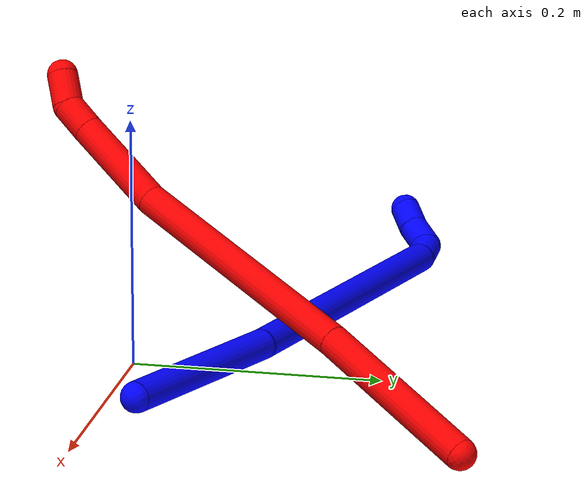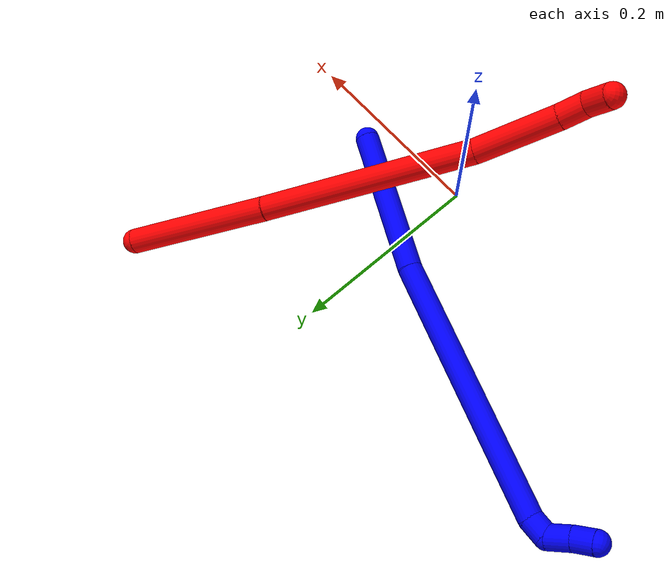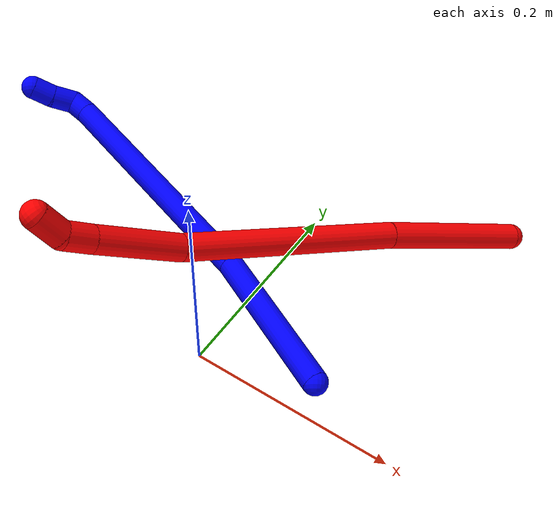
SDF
<sdf version="1.7">
 <world name="default">
  <plugin name="TubeGeneratorPlugin" filename="libtube_generator_plugin.so"/>
  <model name="photoneo_s_sensor">
   <static>1</static>
   <pose>0 0 2 1.57079 1.57079 3.14159</pose>
   <link name="link">
    <inertial><mass>0.1</mass></inertial>
    <sensor name="sensor" type="depth">
     <update_rate>30</update_rate>
     <camera>
      <horizontal_fov>1.22</horizontal_fov>
      <image><width>1920</width><height>1200</height><format>B8G8R8</format></image>
      <clip><near>0.1</near><far>4</far></clip>
      <depth_camera><output>points</output></depth_camera>
     </camera>
     <plugin name="camera_plugin" filename="libgazebo_ros_depth_camera.so">
      <baseline>0.2</baseline>
      <alwaysOn>1</alwaysOn>
      <updateRate>0.0</updateRate>
      <cameraName>camera_ir</cameraName>
      <imageTopicName>/camera/color/image_raw</imageTopicName>
      <cameraInfoTopicName>/camera/color/camera_info</cameraInfoTopicName>
      <depthImageTopicName>/camera/depth/image_raw</depthImageTopicName>
      <depthImageCameraInfoTopicName>/camera/depth/camera_info</depthImageCameraInfoTopicName>
      <pointCloudTopicName>/camera/depth/points</pointCloudTopicName>
      <frameName>fr_optical</frameName>
      <pointCloudCutoff>0.1</pointCloudCutoff>
      <pointCloudCutoffMax>2.0</pointCloudCutoffMax>
      <distortionK1>0</distortionK1>
      <distortionK2>0</distortionK2>
      <distortionK3>0</distortionK3>
      <distortionT1>0</distortionT1>
      <distortionT2>0</distortionT2>
      <CxPrime>0</CxPrime>
      <Cx>0</Cx>
      <Cy>0</Cy>
      <focalLength>0</focalLength>
      <hackBaseline>0</hackBaseline>
     </plugin>
    </sensor>
   </link>
  </model>
  <gravity>0 0 -9.8</gravity>
  <magnetic_field>6e-06 2.3e-05 -4.2e-05</magnetic_field>
  <atmosphere type="adiabatic"/>
  <physics name="default_physics" default="0" type="ode">
   <max_step_size>0.003</max_step_size>
   <real_time_factor>1</real_time_factor>
   <real_time_update_rate>1000</real_time_update_rate>
   <max_contacts>10000</max_contacts>
   <ode>
    <solver>
     <type>quick</type>
     <iters>100</iters>
     <sor>1.3</sor>
     <use_dynamic_moi_rescaling>0</use_dynamic_moi_rescaling>
    </solver>
    <constraints>
     <contact_max_correcting_vel>0</contact_max_correcting_vel>
     <contact_surface_layer>0.001</contact_surface_layer>
     <cfm>0</cfm>
     <erp>0.2</erp>
    </constraints>
   </ode>
  </physics>
  <scene><ambient>0.4 0.4 0.4 1</ambient><background>0.7 0.7 0.7 1</background><shadows>0</shadows></scene>
  <audio><device>default</device></audio>
  <spherical_coordinates>
   <surface_model>EARTH_WGS84</surface_model>
   <latitude_deg>0</latitude_deg>
   <longitude_deg>0</longitude_deg>
   <elevation>0</elevation>
   <heading_deg>0</heading_deg>
  </spherical_coordinates>
  <model name="bin">
   <static>1</static>
   <link name="bottom">
    <collision name="collision-bottom">
     <pose>0 0 -0.01 0 -0 0</pose>
     <geometry><box><size>0.8 0.6 0.02</size></box></geometry>
     <surface>
      <friction><ode><mu>100</mu><mu2>100</mu2></ode></friction>
      <contact><collide_bitmask>65535</collide_bitmask></contact>
     </surface>
    </collision>
   </link>
   <link name="west_wall">
    <collision name="collision-west_wall">
     <pose>-0.41 0 0.1 0 -0 0</pose>
     <geometry><box><size>0.02 0.6 0.2</size></box></geometry>
     <surface>
      <friction><ode><mu>100</mu><mu2>100</mu2></ode></friction>
      <contact><collide_bitmask>65535</collide_bitmask></contact>
     </surface>
    </collision>
   </link>
   <link name="east_wall">
    <collision name="collision-east_wall">
     <pose>0.41 0 0.1 0 -0 0</pose>
     <geometry><box><size>0.02 0.6 0.2</size></box></geometry>
     <surface>
      <friction><ode><mu>100</mu><mu2>100</mu2></ode></friction>
      <contact><collide_bitmask>65535</collide_bitmask></contact>
     </surface>
    </collision>
   </link>
   <link name="south_wall">
    <collision name="collision-south_wall">
     <pose>0 -0.31 0.1 0 -0 0</pose>
     <geometry><box><size>0.8 0.02 0.2</size></box></geometry>
     <surface>
      <friction><ode><mu>100</mu><mu2>100</mu2></ode></friction>
      <contact><collide_bitmask>65535</collide_bitmask></contact>
     </surface>
    </collision>
   </link>
   <link name="north_wall">
    <collision name="collision-north_wall">
     <pose>0 0.31 0.1 0 -0 0</pose>
     <geometry><box><size>0.8 0.02 0.2</size></box></geometry>
     <surface>
      <friction><ode><mu>100</mu><mu2>100</mu2></ode></friction>
      <contact><collide_bitmask>65535</collide_bitmask></contact>
     </surface>
    </collision>
   </link>
  </model>
  <model name="1">
   <static>0</static>
   <link name="1">
    <collision name="collision-cylinder-e_1_1_4">
     <pose>-0.043941 0.018437 0.062702 -0.285985 -0.591918 0.087744</pose>
     <geometry><cylinder><radius>0.0125</radius><length>0.157509</length></cylinder></geometry>
     <surface>
      <friction><ode><mu>1.16</mu><mu2>1.16</mu2><slip1>0</slip1><slip2>0</slip2></ode></friction>
      <contact><ode><kp>1e+06</kp><kd>1</kd><max_vel>0</max_vel><min_depth>0.001</min_depth></ode></contact>
     </surface>
    </collision>
    <visual name="visual-cylinder-e_1_1_4">
     <pose>-0.043941 0.018437 0.062702 -0.285985 -0.591918 0.087744</pose>
     <geometry><cylinder><radius>0.0125</radius><length>0.157509</length></cylinder></geometry>
     <material><ambient>0 0 1 1</ambient></material>
    </visual>
    <collision name="collision-cylinder-e_2_4_5">
     <pose>-0.177421 0.062915 0.225172 -0.255313 -0.715059 0.095829</pose>
     <geometry><cylinder><radius>0.0125</radius><length>0.273122</length></cylinder></geometry>
     <surface>
      <friction><ode><mu>1.16</mu><mu2>1.16</mu2><slip1>0</slip1><slip2>0</slip2></ode></friction>
      <contact><ode><kp>1e+06</kp><kd>1</kd><max_vel>0</max_vel><min_depth>0.001</min_depth></ode></contact>
     </surface>
    </collision>
    <visual name="visual-cylinder-e_2_4_5">
     <pose>-0.177421 0.062915 0.225172 -0.255313 -0.715059 0.095829</pose>
     <geometry><cylinder><radius>0.0125</radius><length>0.273122</length></cylinder></geometry>
     <material><ambient>0 0 1 1</ambient></material>
    </visual>
    <collision name="collision-cylinder-e_3_5_6">
     <pose>-0.27504 0.088077 0.331885 0.125747 -0.856994 -0.057502</pose>
     <geometry><cylinder><radius>0.0125</radius><length>0.021382</length></cylinder></geometry>
     <surface>
      <friction><ode><mu>1.16</mu><mu2>1.16</mu2><slip1>0</slip1><slip2>0</slip2></ode></friction>
      <contact><ode><kp>1e+06</kp><kd>1</kd><max_vel>0</max_vel><min_depth>0.001</min_depth></ode></contact>
     </surface>
    </collision>
    <visual name="visual-cylinder-e_3_5_6">
     <pose>-0.27504 0.088077 0.331885 0.125747 -0.856994 -0.057502</pose>
     <geometry><cylinder><radius>0.0125</radius><length>0.021382</length></cylinder></geometry>
     <material><ambient>0 0 1 1</ambient></material>
    </visual>
    <collision name="collision-cylinder-e_4_6_7">
     <pose>-0.293198 0.079877 0.339787 1.44071 -0.938382 -0.837285</pose>
     <geometry><cylinder><radius>0.0125</radius><length>0.024988</length></cylinder></geometry>
     <surface>
      <friction><ode><mu>1.16</mu><mu2>1.16</mu2><slip1>0</slip1><slip2>0</slip2></ode></friction>
      <contact><ode><kp>1e+06</kp><kd>1</kd><max_vel>0</max_vel><min_depth>0.001</min_depth></ode></contact>
     </surface>
    </collision>
    <visual name="visual-cylinder-e_4_6_7">
     <pose>-0.293198 0.079877 0.339787 1.44071 -0.938382 -0.837285</pose>
     <geometry><cylinder><radius>0.0125</radius><length>0.024988</length></cylinder></geometry>
     <material><ambient>0 0 1 1</ambient></material>
    </visual>
    <collision name="collision-cylinder-e_5_7_2">
     <pose>-0.312032 0.065594 0.343415 1.20455 -0.865529 -0.615042</pose>
     <geometry><cylinder><radius>0.0125</radius><length>0.022998</length></cylinder></geometry>
     <surface>
      <friction><ode><mu>1.16</mu><mu2>1.16</mu2><slip1>0</slip1><slip2>0</slip2></ode></friction>
      <contact><ode><kp>1e+06</kp><kd>1</kd><max_vel>0</max_vel><min_depth>0.001</min_depth></ode></contact>
     </surface>
    </collision>
    <visual name="visual-cylinder-e_5_7_2">
     <pose>-0.312032 0.065594 0.343415 1.20455 -0.865529 -0.615042</pose>
     <geometry><cylinder><radius>0.0125</radius><length>0.022998</length></cylinder></geometry>
     <material><ambient>0 0 1 1</ambient></material>
    </visual>
    <collision name="collision-sphere-2">
     <pose>-0.320788 0.058634 0.346084 0 -0 0</pose>
     <geometry><sphere><radius>0.0125</radius></sphere></geometry>
     <surface>
      <friction><ode><mu>1.16</mu><mu2>1.16</mu2><slip1>0</slip1><slip2>0</slip2></ode></friction>
      <contact><ode><kp>1e+06</kp><kd>1</kd><max_vel>0</max_vel><min_depth>0.001</min_depth></ode></contact>
     </surface>
    </collision>
    <visual name="visual-sphere-2">
     <pose>-0.320788 0.058634 0.346084 0 -0 0</pose>
     <geometry><sphere><radius>0.0125</radius></sphere></geometry>
     <material><ambient>0 0 1 1</ambient></material>
    </visual>
    <collision name="collision-sphere-7">
     <pose>-0.303276 0.072554 0.340745 0 -0 0</pose>
     <geometry><sphere><radius>0.0125</radius></sphere></geometry>
     <surface>
      <friction><ode><mu>1.16</mu><mu2>1.16</mu2><slip1>0</slip1><slip2>0</slip2></ode></friction>
      <contact><ode><kp>1e+06</kp><kd>1</kd><max_vel>0</max_vel><min_depth>0.001</min_depth></ode></contact>
     </surface>
    </collision>
    <visual name="visual-sphere-7">
     <pose>-0.303276 0.072554 0.340745 0 -0 0</pose>
     <geometry><sphere><radius>0.0125</radius></sphere></geometry>
     <material><ambient>0 0 1 1</ambient></material>
    </visual>
    <collision name="collision-sphere-6">
     <pose>-0.283121 0.0872 0.338829 0 -0 0</pose>
     <geometry><sphere><radius>0.0125</radius></sphere></geometry>
     <surface>
      <friction><ode><mu>1.16</mu><mu2>1.16</mu2><slip1>0</slip1><slip2>0</slip2></ode></friction>
      <contact><ode><kp>1e+06</kp><kd>1</kd><max_vel>0</max_vel><min_depth>0.001</min_depth></ode></contact>
     </surface>
    </collision>
    <visual name="visual-sphere-6">
     <pose>-0.283121 0.0872 0.338829 0 -0 0</pose>
     <geometry><sphere><radius>0.0125</radius></sphere></geometry>
     <material><ambient>0 0 1 1</ambient></material>
    </visual>
    <collision name="collision-sphere-5">
     <pose>-0.266959 0.088955 0.324941 0 -0 0</pose>
     <geometry><sphere><radius>0.0125</radius></sphere></geometry>
     <surface>
      <friction><ode><mu>1.16</mu><mu2>1.16</mu2><slip1>0</slip1><slip2>0</slip2></ode></friction>
      <contact><ode><kp>1e+06</kp><kd>1</kd><max_vel>0</max_vel><min_depth>0.001</min_depth></ode></contact>
     </surface>
    </collision>
    <visual name="visual-sphere-5">
     <pose>-0.266959 0.088955 0.324941 0 -0 0</pose>
     <geometry><sphere><radius>0.0125</radius></sphere></geometry>
     <material><ambient>0 0 1 1</ambient></material>
    </visual>
    <collision name="collision-sphere-1">
     <geometry><sphere><radius>0.0125</radius></sphere></geometry>
     <surface>
      <friction><ode><mu>1.16</mu><mu2>1.16</mu2><slip1>0</slip1><slip2>0</slip2></ode></friction>
      <contact><ode><kp>1e+06</kp><kd>1</kd><max_vel>0</max_vel><min_depth>0.001</min_depth></ode></contact>
     </surface>
    </collision>
    <visual name="visual-sphere-1">
     <geometry><sphere><radius>0.0125</radius></sphere></geometry>
     <material><ambient>0 0 1 1</ambient></material>
    </visual>
    <collision name="collision-sphere-4">
     <pose>-0.087883 0.036874 0.125403 0 -0 0</pose>
     <geometry><sphere><radius>0.0125</radius></sphere></geometry>
     <surface>
      <friction><ode><mu>1.16</mu><mu2>1.16</mu2><slip1>0</slip1><slip2>0</slip2></ode></friction>
      <contact><ode><kp>1e+06</kp><kd>1</kd><max_vel>0</max_vel><min_depth>0.001</min_depth></ode></contact>
     </surface>
    </collision>
    <visual name="visual-sphere-4">
     <pose>-0.087883 0.036874 0.125403 0 -0 0</pose>
     <geometry><sphere><radius>0.0125</radius></sphere></geometry>
     <material><ambient>0 0 1 1</ambient></material>
    </visual>
    <inertial>
     <pose>-0.151525 0.050951 0.189721 0 -0 0</pose>
     <mass>0.5</mass>
     <inertia>
      <ixx>0.001682</ixx>
      <ixy>0</ixy>
      <ixz>0</ixz>
      <iyy>0.002149</iyy>
      <iyz>0</iyz>
      <izz>0.000936</izz>
     </inertia>
    </inertial>
   </link>
   <pose>0.108342 0.029026 0.012425 -1.17342 -0.163065 0.517205</pose>
  </model>
  <model name="2">
   <static>0</static>
   <link name="2">
    <collision name="collision-cylinder-e_1_1_4">
     <pose>-0.036291 -0.046811 -0.042417 2.30698 -0.521459 -1.08348</pose>
     <geometry><cylinder><radius>0.0125</radius><length>0.145705</length></cylinder></geometry>
     <surface>
      <friction><ode><mu>1.16</mu><mu2>1.16</mu2><slip1>0</slip1><slip2>0</slip2></ode></friction>
      <contact><ode><kp>1e+06</kp><kd>1</kd><max_vel>0</max_vel><min_depth>0.001</min_depth></ode></contact>
     </surface>
    </collision>
    <visual name="visual-cylinder-e_1_1_4">
     <pose>-0.036291 -0.046811 -0.042417 2.30698 -0.521459 -1.08348</pose>
     <geometry><cylinder><radius>0.0125</radius><length>0.145705</length></cylinder></geometry>
     <material><ambient>1 0 0 1</ambient></material>
    </visual>
    <collision name="collision-cylinder-e_2_4_5">
     <pose>-0.120671 -0.162715 -0.150496 2.33074 -0.467247 -1.0125</pose>
     <geometry><cylinder><radius>0.0125</radius><length>0.213521</length></cylinder></geometry>
     <surface>
      <friction><ode><mu>1.16</mu><mu2>1.16</mu2><slip1>0</slip1><slip2>0</slip2></ode></friction>
      <contact><ode><kp>1e+06</kp><kd>1</kd><max_vel>0</max_vel><min_depth>0.001</min_depth></ode></contact>
     </surface>
    </collision>
    <visual name="visual-cylinder-e_2_4_5">
     <pose>-0.120671 -0.162715 -0.150496 2.33074 -0.467247 -1.0125</pose>
     <geometry><cylinder><radius>0.0125</radius><length>0.213521</length></cylinder></geometry>
     <material><ambient>1 0 0 1</ambient></material>
    </visual>
    <collision name="collision-cylinder-e_3_5_6">
     <pose>-0.190063 -0.263652 -0.234847 2.1015 -0.523319 -0.874905</pose>
     <geometry><cylinder><radius>0.0125</radius><length>0.085259</length></cylinder></geometry>
     <surface>
      <friction><ode><mu>1.16</mu><mu2>1.16</mu2><slip1>0</slip1><slip2>0</slip2></ode></friction>
      <contact><ode><kp>1e+06</kp><kd>1</kd><max_vel>0</max_vel><min_depth>0.001</min_depth></ode></contact>
     </surface>
    </collision>
    <visual name="visual-cylinder-e_3_5_6">
     <pose>-0.190063 -0.263652 -0.234847 2.1015 -0.523319 -0.874905</pose>
     <geometry><cylinder><radius>0.0125</radius><length>0.085259</length></cylinder></geometry>
     <material><ambient>1 0 0 1</ambient></material>
    </visual>
    <collision name="collision-cylinder-e_4_6_7">
     <pose>-0.218124 -0.306316 -0.258791 2.02298 -0.511832 -0.791829</pose>
     <geometry><cylinder><radius>0.0125</radius><length>0.02759</length></cylinder></geometry>
     <surface>
      <friction><ode><mu>1.16</mu><mu2>1.16</mu2><slip1>0</slip1><slip2>0</slip2></ode></friction>
      <contact><ode><kp>1e+06</kp><kd>1</kd><max_vel>0</max_vel><min_depth>0.001</min_depth></ode></contact>
     </surface>
    </collision>
    <visual name="visual-cylinder-e_4_6_7">
     <pose>-0.218124 -0.306316 -0.258791 2.02298 -0.511832 -0.791829</pose>
     <geometry><cylinder><radius>0.0125</radius><length>0.02759</length></cylinder></geometry>
     <material><ambient>1 0 0 1</ambient></material>
    </visual>
    <collision name="collision-cylinder-e_5_7_2">
     <pose>-0.235656 -0.326002 -0.264499 1.62189 -0.881605 -0.921692</pose>
     <geometry><cylinder><radius>0.0125</radius><length>0.027925</length></cylinder></geometry>
     <surface>
      <friction><ode><mu>1.16</mu><mu2>1.16</mu2><slip1>0</slip1><slip2>0</slip2></ode></friction>
      <contact><ode><kp>1e+06</kp><kd>1</kd><max_vel>0</max_vel><min_depth>0.001</min_depth></ode></contact>
     </surface>
    </collision>
    <visual name="visual-cylinder-e_5_7_2">
     <pose>-0.235656 -0.326002 -0.264499 1.62189 -0.881605 -0.921692</pose>
     <geometry><cylinder><radius>0.0125</radius><length>0.027925</length></cylinder></geometry>
     <material><ambient>1 0 0 1</ambient></material>
    </visual>
    <collision name="collision-sphere-2">
     <pose>-0.246432 -0.334869 -0.264953 0 -0 0</pose>
     <geometry><sphere><radius>0.0125</radius></sphere></geometry>
     <surface>
      <friction><ode><mu>1.16</mu><mu2>1.16</mu2><slip1>0</slip1><slip2>0</slip2></ode></friction>
      <contact><ode><kp>1e+06</kp><kd>1</kd><max_vel>0</max_vel><min_depth>0.001</min_depth></ode></contact>
     </surface>
    </collision>
    <visual name="visual-sphere-2">
     <pose>-0.246432 -0.334869 -0.264953 0 -0 0</pose>
     <geometry><sphere><radius>0.0125</radius></sphere></geometry>
     <material><ambient>1 0 0 1</ambient></material>
    </visual>
    <collision name="collision-sphere-7">
     <pose>-0.224881 -0.317135 -0.264046 0 -0 0</pose>
     <geometry><sphere><radius>0.0125</radius></sphere></geometry>
     <surface>
      <friction><ode><mu>1.16</mu><mu2>1.16</mu2><slip1>0</slip1><slip2>0</slip2></ode></friction>
      <contact><ode><kp>1e+06</kp><kd>1</kd><max_vel>0</max_vel><min_depth>0.001</min_depth></ode></contact>
     </surface>
    </collision>
    <visual name="visual-sphere-7">
     <pose>-0.224881 -0.317135 -0.264046 0 -0 0</pose>
     <geometry><sphere><radius>0.0125</radius></sphere></geometry>
     <material><ambient>1 0 0 1</ambient></material>
    </visual>
    <collision name="collision-sphere-6">
     <pose>-0.211368 -0.295498 -0.253536 0 -0 0</pose>
     <geometry><sphere><radius>0.0125</radius></sphere></geometry>
     <surface>
      <friction><ode><mu>1.16</mu><mu2>1.16</mu2><slip1>0</slip1><slip2>0</slip2></ode></friction>
      <contact><ode><kp>1e+06</kp><kd>1</kd><max_vel>0</max_vel><min_depth>0.001</min_depth></ode></contact>
     </surface>
    </collision>
    <visual name="visual-sphere-6">
     <pose>-0.211368 -0.295498 -0.253536 0 -0 0</pose>
     <geometry><sphere><radius>0.0125</radius></sphere></geometry>
     <material><ambient>1 0 0 1</ambient></material>
    </visual>
    <collision name="collision-sphere-5">
     <pose>-0.168759 -0.231807 -0.216158 0 -0 0</pose>
     <geometry><sphere><radius>0.0125</radius></sphere></geometry>
     <surface>
      <friction><ode><mu>1.16</mu><mu2>1.16</mu2><slip1>0</slip1><slip2>0</slip2></ode></friction>
      <contact><ode><kp>1e+06</kp><kd>1</kd><max_vel>0</max_vel><min_depth>0.001</min_depth></ode></contact>
     </surface>
    </collision>
    <visual name="visual-sphere-5">
     <pose>-0.168759 -0.231807 -0.216158 0 -0 0</pose>
     <geometry><sphere><radius>0.0125</radius></sphere></geometry>
     <material><ambient>1 0 0 1</ambient></material>
    </visual>
    <collision name="collision-sphere-1">
     <geometry><sphere><radius>0.0125</radius></sphere></geometry>
     <surface>
      <friction><ode><mu>1.16</mu><mu2>1.16</mu2><slip1>0</slip1><slip2>0</slip2></ode></friction>
      <contact><ode><kp>1e+06</kp><kd>1</kd><max_vel>0</max_vel><min_depth>0.001</min_depth></ode></contact>
     </surface>
    </collision>
    <visual name="visual-sphere-1">
     <geometry><sphere><radius>0.0125</radius></sphere></geometry>
     <material><ambient>1 0 0 1</ambient></material>
    </visual>
    <collision name="collision-sphere-4">
     <pose>-0.072583 -0.093622 -0.084833 0 -0 0</pose>
     <geometry><sphere><radius>0.0125</radius></sphere></geometry>
     <surface>
      <friction><ode><mu>1.16</mu><mu2>1.16</mu2><slip1>0</slip1><slip2>0</slip2></ode></friction>
      <contact><ode><kp>1e+06</kp><kd>1</kd><max_vel>0</max_vel><min_depth>0.001</min_depth></ode></contact>
     </surface>
    </collision>
    <visual name="visual-sphere-4">
     <pose>-0.072583 -0.093622 -0.084833 0 -0 0</pose>
     <geometry><sphere><radius>0.0125</radius></sphere></geometry>
     <material><ambient>1 0 0 1</ambient></material>
    </visual>
    <inertial>
     <pose>-0.119714 -0.163194 -0.145726 0 -0 0</pose>
     <mass>0.5</mass>
     <inertia>
      <ixx>-0.000354</ixx>
      <ixy>0</ixy>
      <ixz>0</ixz>
      <iyy>-0.000955</iyy>
      <iyz>0</iyz>
      <izz>0.001256</izz>
     </inertia>
    </inertial>
   </link>
   <pose>0.176236 0.286817 0.011495 -0.894763 0.4906 -0.233741</pose>
  </model>
 </world>
</sdf>
